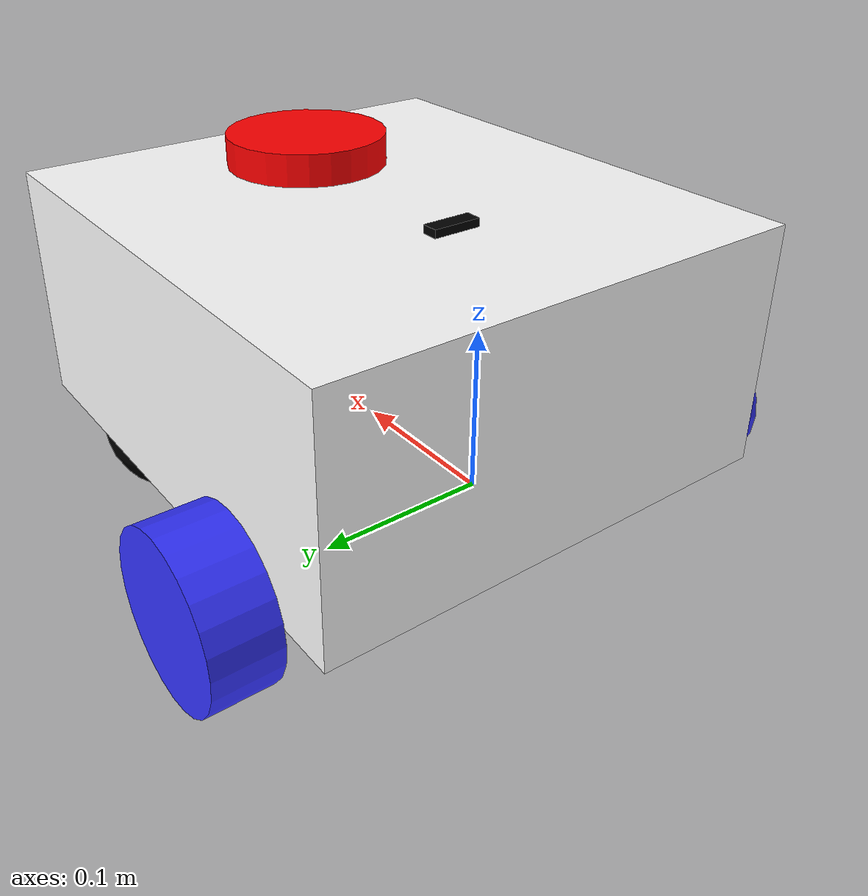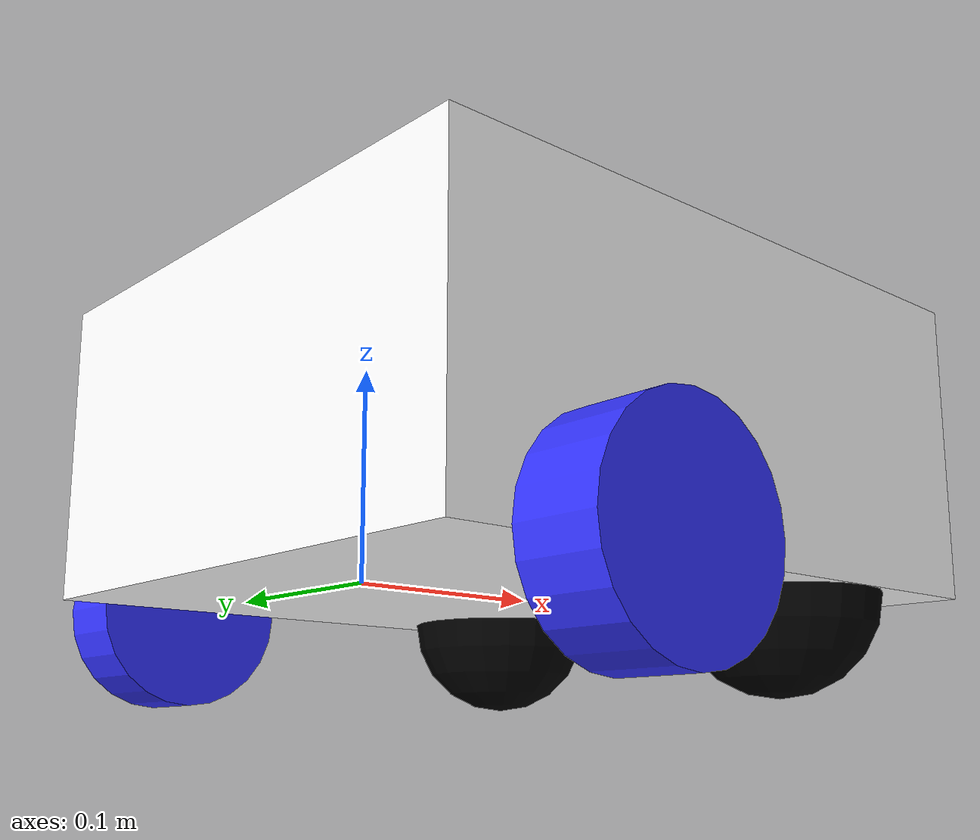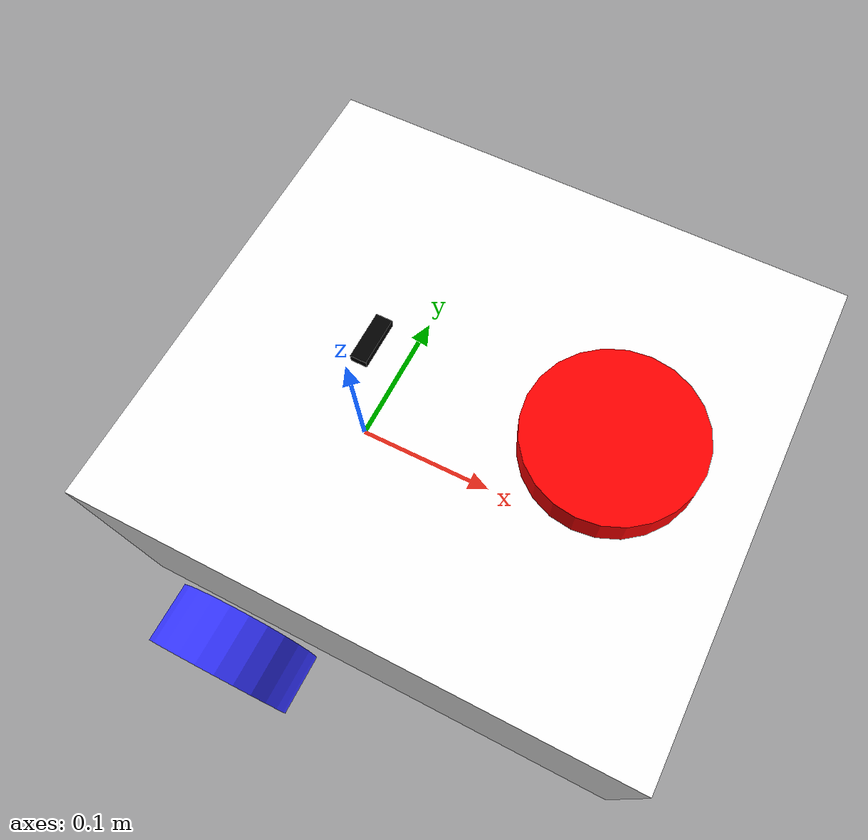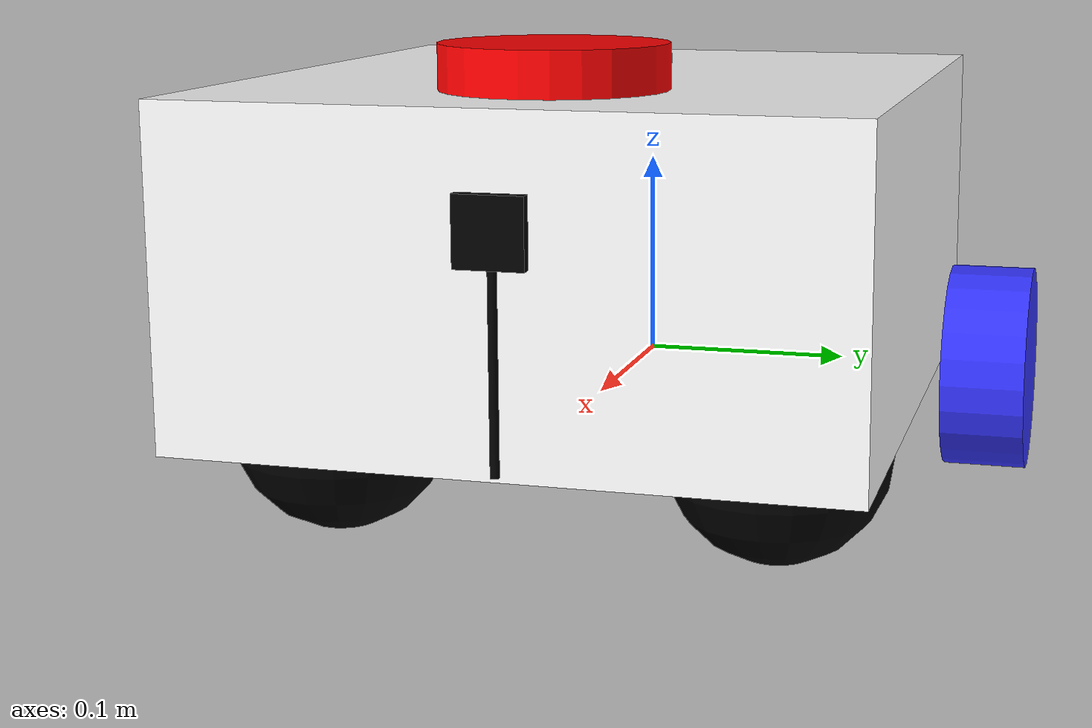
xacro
<?xml version="1.0"?>
<robot xmlns:xacro="http://www.ros.org/wiki/xacro"  name="robot">

    <xacro:include filename="robot_core.xacro" />
    <xacro:include filename="control.xacro" />
    <xacro:include filename="lidar.xacro" />
    <xacro:include filename="camera.xacro" />
    <xacro:include filename="imu.xacro" />

</robot>

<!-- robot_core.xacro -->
<robot xmlns:xacro="http://www.ros.org/wiki/xacro" >

    <xacro:include filename="inertial_macros.xacro"/>

    <material name="white">
        <color rgba="1 1 1 1" />
    </material>

    <material name="blue">
        <color rgba="0.2 0.2 1 1"/>
    </material>

    <material name="black">
        <color rgba="0 0 0 1"/>
    </material>

    <material name="red">
        <color rgba="1 0 0 1"/>
    </material>

    <!-- BASE LINK -->

    <link name="base_link">

    </link>

    <!-- BASE FOOTPRINT -->

    <link name="base_footprint">

    </link>

    <joint name="base_footprint_joint" type="fixed">
        <parent link="base_link"/>
        <child link="base_footprint"/>
        <origin xyz="0 0 0"/>
    </joint>

    <!-- CHASSIS LINK -->

    <joint name="chassis_joint" type="fixed">
        <parent link="base_link"/>
        <child link="chassis"/>
        <origin xyz="-0.075 0 0"/>
    </joint>

    <link name="chassis">
        <visual>
            <origin xyz="0.165 0 0.075"/>
            <geometry>
                <box size="0.33 0.3 0.15"/>
            </geometry>
            <material name="white"/>
        </visual>
        <collision>
            <origin xyz="0.165 0 0.075"/>
            <geometry>
                <box size="0.33 0.3 0.15"/>
            </geometry>
        </collision>
        <xacro:inertial_box mass="0.5" x="0.33" y="0.3" z="0.15">
            <origin xyz="0.1275 0 0.075" rpy="0 0 0"/>
        </xacro:inertial_box>
    </link>

    <gazebo reference="chassis">
    	<material>Gazebo/Blue</material>
    </gazebo>

    <!-- LEFT WHEEL LINK -->

    <joint name="left_wheel_joint" type="continuous">
        <parent link="base_link"/>
        <child link="left_wheel"/>
        <origin xyz="0 0.175 0" rpy="-${pi/2} 0 0" />
        <axis xyz="0 0 1"/>
    </joint>

    <link name="left_wheel">
        <visual>
            <geometry>
                <cylinder radius="0.05" length="0.04"/>
            </geometry>
            <material name="blue"/>
        </visual>
        <collision>
            <geometry>
                <cylinder radius="0.05" length="0.04"/>
            </geometry>
        </collision>
        <xacro:inertial_cylinder mass="0.1" length="0.04" radius="0.05">
            <origin xyz="0 0 0" rpy="0 0 0"/>
        </xacro:inertial_cylinder>
    </link>

    <gazebo reference="left_wheel">
    	<material>Gazebo/White</material>
    </gazebo>

    <!-- RIGHT WHEEL LINK -->

    <joint name="right_wheel_joint" type="continuous">
        <parent link="base_link"/>
        <child link="right_wheel"/>
        <origin xyz="0 -0.175 0" rpy="${pi/2} 0 0" />
        <axis xyz="0 0 -1"/>
    </joint>

    <link name="right_wheel">
        <visual>
            <geometry>
                <cylinder radius="0.05" length="0.04"/>
            </geometry>
            <material name="blue"/>
        </visual>
        <collision>
            <geometry>
                <cylinder radius="0.05" length="0.04"/>
            </geometry>
        </collision>
        <xacro:inertial_cylinder mass="0.1" length="0.04" radius="0.05">
            <origin xyz="0 0 0" rpy="0 0 0"/>
        </xacro:inertial_cylinder>
    </link>

    <gazebo reference="right_wheel">
    	<material>Gazebo/White</material>
    </gazebo>

    <!-- CASTER WHEEL LINK -->

    <joint name="left_caster_wheel_joint" type="fixed">
        <parent link="chassis"/>
        <child link="left_caster_wheel"/>
        <origin xyz="0.25 0.1 0"/>
    </joint>

    <link name="left_caster_wheel">
        <visual>
            <geometry>
                <sphere radius="0.05"/>
            </geometry>
            <material name="black"/>
        </visual>
        <collision>
            <geometry>
                <sphere radius="0.05"/>
            </geometry>
        </collision>
        <xacro:inertial_sphere mass="0.1" radius="0.05">
            <origin xyz="0 0 0" rpy="0 0 0"/>
        </xacro:inertial_sphere>
    </link>

    <!-- CASTER WHEEL LINK -->

    <joint name="right_caster_wheel_joint" type="fixed">
        <parent link="chassis"/>
        <child link="right_caster_wheel"/>
        <origin xyz="0.25 -0.1 0"/>
    </joint>

    <link name="right_caster_wheel">
        <visual>
            <geometry>
                <sphere radius="0.05"/>
            </geometry>
            <material name="black"/>
        </visual>
        <collision>
            <geometry>
                <sphere radius="0.05"/>
            </geometry>
        </collision>
        <xacro:inertial_sphere mass="0.1" radius="0.05">
            <origin xyz="0 0 0" rpy="0 0 0"/>
        </xacro:inertial_sphere>
    </link>

    <gazebo reference="left_caster_wheel">
    	<material>Gazebo/Black</material>
        <mu1 value="0.001"/>
        <mu2 value="0.001"/>
    </gazebo>

    <gazebo reference="right_caster_wheel">
    	<material>Gazebo/Black</material>
        <mu1 value="0.001"/>
        <mu2 value="0.001"/>
    </gazebo>

</robot>

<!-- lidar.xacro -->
<robot xmlns:xacro="http://www.ros.org/wiki/xacro" >

    <joint name="laser_joint" type="fixed">
        <parent link="chassis"/>
        <child link="laser_frame"/>
        <origin xyz="0.245 0 0.160" rpy="0 0 0"/>
    </joint>

    <link name="laser_frame">
        <visual>
            <geometry>
                <cylinder radius="0.05" length="0.02"/>
            </geometry>
            <material name="red"/>
        </visual>
        <collision>
            <geometry>
                <cylinder radius="0.05" length="0.02"/>
            </geometry>
        </collision>
        <xacro:inertial_cylinder mass="0.1" length="0.02" radius="0.05">
            <origin xyz="0 0 0" rpy="0 0 0"/>
        </xacro:inertial_cylinder>
    </link>

    <gazebo reference="laser_frame">
        <material>Gazebo/Red</material>

        <sensor name="laser" type="ray">
            <pose> 0 0 0 0 0 0 </pose>
            <visualize>true</visualize>
            <update_rate>10</update_rate>
            <ray>
                <scan>
                    <horizontal>
                        <samples>360</samples>
                        <min_angle>-3.14</min_angle>
                        <max_angle>3.14</max_angle>
                    </horizontal>
                </scan>
                <range>
                    <min>0.3</min>
                    <max>6</max>
                </range>
            </ray>
            <plugin name="laser_controller" filename="libgazebo_ros_ray_sensor.so">
                <ros>
                    <argument>~/out:=scan</argument>
                </ros>
                <output_type>sensor_msgs/LaserScan</output_type>
                <frame_name>laser_frame</frame_name>
            </plugin>
        </sensor>
    </gazebo>

</robot>

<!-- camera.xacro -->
<robot xmlns:xacro="http://www.ros.org/wiki/xacro" >

    <joint name="camera_joint" type="fixed">
        <parent link="chassis"/>
        <child link="camera_link"/>
        <origin xyz="0.330 0 0.102" rpy="0 0 0"/>
    </joint>

    <link name="camera_link">
        <visual>
            <geometry>
                <box size="0.010 0.03 0.03"/>
            </geometry>
            <material name="black"/>
        </visual>
        <visual>
            <origin xyz="0 0 -0.05"/>
            <geometry>
                <cylinder radius="0.002" length="0.1"/>
            </geometry>
            <material name="black"/>
        </visual>
    </link>

    <joint name="camera_optical_joint" type="fixed">
        <parent link="camera_link"/>
        <child link="camera_link_optical"/>
        <origin xyz="0 0 0" rpy="${-pi/2} 0 ${-pi/2}"/>
    </joint>

    <link name="camera_link_optical"></link>

    <gazebo reference="camera_link">
        <material>Gazebo/Black</material>

        <sensor name="camera" type="camera">
            <pose> 0 0 0 0 0 0 </pose>
            <visualize>true</visualize>
            <update_rate>10</update_rate>
            <camera>
                <horizontal_fov>1.089</horizontal_fov>
                <image>
                    <format>R8G8B8</format>
                    <width>640</width>
                    <height>480</height>
                </image>
                <clip>
                    <near>0.05</near>
                    <far>8.0</far>
                </clip>
            </camera>
            <plugin name="camera_controller" filename="libgazebo_ros_camera.so">
                <frame_name>camera_link_optical</frame_name>
            </plugin>
        </sensor>
    </gazebo>

</robot>

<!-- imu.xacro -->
<robot xmlns:xacro="http://www.ros.org/wiki/xacro" >

    <link name="imu_link">
        <visual>
            <geometry>
                <box size="0.010 0.03 0.03"/>
            </geometry>
            <material name="black"/>
        </visual>
        <visual>
            <origin xyz="0 0 -0.05"/>
            <geometry>
                <cylinder radius="0.002" length="0.05"/>
            </geometry>
            <material name="black"/>
        </visual>
    </link>

  <joint name="imu_joint" type="fixed">
    <origin xyz="0.1 0 0.140" rpy="0 0 0" />
    <parent link="chassis" />
    <child link="imu_link" />
    <axis xyz="0 0 0" />
  </joint>

  <!-- IMU -->
  <gazebo reference="imu_link">
    <sensor name="imu" type="imu">
        <always_on>true</always_on>
        <update_rate>100</update_rate>
        <imu>
          <angular_velocity>
            <x>
              <noise type="gaussian">
                <mean>0.0</mean>
                <stddev>2e-4</stddev>
              </noise>
            </x>
            <y>
              <noise type="gaussian">
                <mean>0.0</mean>
                <stddev>2e-4</stddev>
              </noise>
            </y>
            <z>
              <noise type="gaussian">
                <mean>0.0</mean>
                <stddev>2e-4</stddev>
              </noise>
            </z>
          </angular_velocity>
          <linear_acceleration>
            <x>
              <noise type="gaussian">
                <mean>0.0</mean>
                <stddev>1.7e-2</stddev>
              </noise>
            </x>
            <y>
              <noise type="gaussian">
                <mean>0.0</mean>
                <stddev>1.7e-2</stddev>
              </noise>
            </y>
            <z>
              <noise type="gaussian">
                <mean>0.0</mean>
                <stddev>1.7e-2</stddev>
              </noise>
            </z>
          </linear_acceleration>
        </imu>
        <plugin name="imu" filename="libgazebo_ros_imu_sensor.so"/>
    </sensor>
  </gazebo>

</robot>
